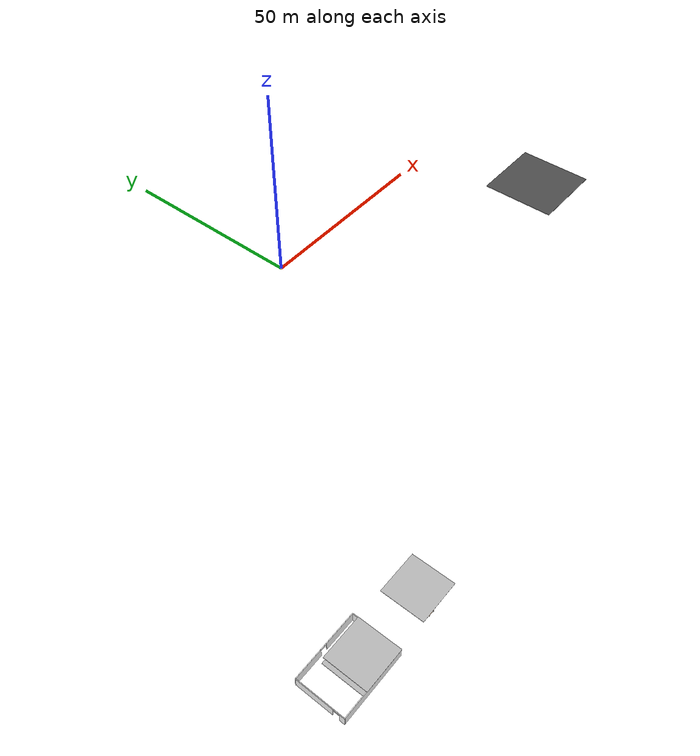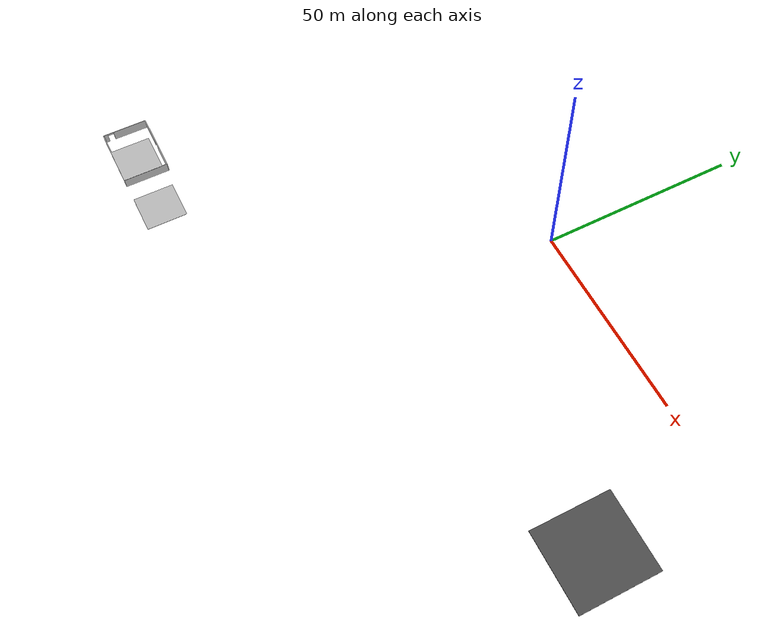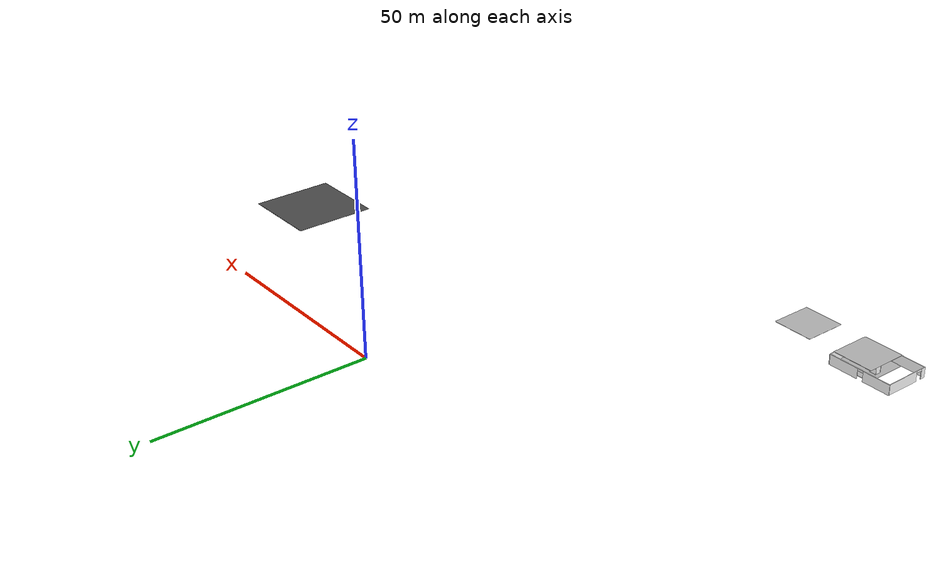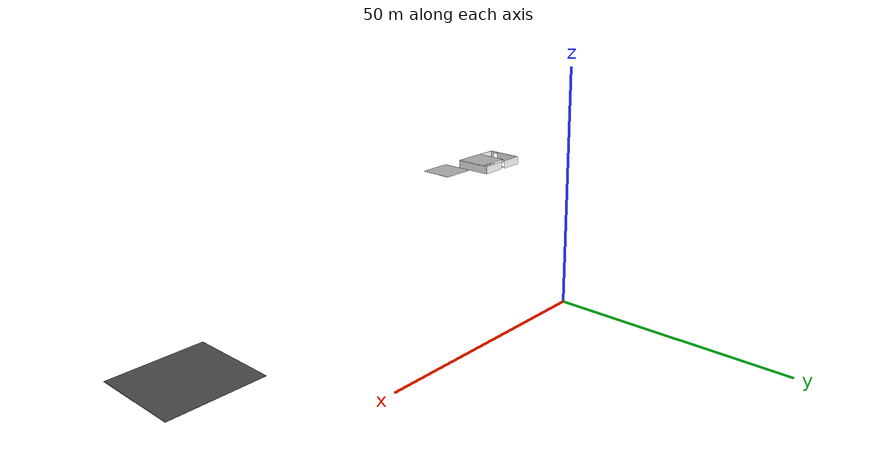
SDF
<sdf version="1.6">
 <world name="default">
  <model name="office1">
   <pose>-70.8387 -79.6403 0 0 -0 0</pose>
   <link name="Wall_11">
    <pose>-7.925 0 0 0 0 -1.5708</pose>
    <visual name="Wall_11_Visual_0">
     <pose>-1.33407 0 1.25 0 -0 0</pose>
     <geometry><box><size>8.58187 0.15 2.5</size></box></geometry>
     <material>
      <script>
       <uri>model://office_env/materials/scripts</uri>
       <uri>model://office_env/materials/textures</uri>
       <name>wall</name>
      </script>
      <ambient>1 1 1 1</ambient>
     </material>
    </visual>
    <collision name="Wall_11_Collision_0">
     <geometry><box><size>8.58187 0.15 2.5</size></box></geometry>
     <pose>-1.33407 0 1.25 0 -0 0</pose>
    </collision>
    <visual name="Wall_11_Visual_1">
     <pose>5.04094 0 1.25 0 -0 0</pose>
     <geometry><box><size>1.16813 0.15 2.5</size></box></geometry>
     <material>
      <script>
       <uri>model://office_env/materials/scripts</uri>
       <uri>model://office_env/materials/textures</uri>
       <name>wall</name>
      </script>
      <ambient>1 1 1 1</ambient>
     </material>
    </visual>
    <collision name="Wall_11_Collision_1">
     <geometry><box><size>1.16813 0.15 2.5</size></box></geometry>
     <pose>5.04094 0 1.25 0 -0 0</pose>
    </collision>
    <visual name="Wall_11_Visual_2">
     <pose>3.70687 0 2.25 0 -0 0</pose>
     <geometry><box><size>1.5 0.15 0.5</size></box></geometry>
     <material>
      <script>
       <uri>model://office_env/materials/scripts</uri>
       <uri>model://office_env/materials/textures</uri>
       <name>wall</name>
      </script>
      <ambient>1 1 1 1</ambient>
     </material>
    </visual>
    <collision name="Wall_11_Collision_2">
     <geometry><box><size>1.5 0.15 0.5</size></box></geometry>
     <pose>3.70687 0 2.25 0 -0 0</pose>
    </collision>
   </link>
   <link name="Wall_12">
    <collision name="Wall_12_Collision">
     <geometry><box><size>16 0.15 2.5</size></box></geometry>
     <pose>0 0 1.25 0 -0 0</pose>
    </collision>
    <visual name="Wall_12_Visual">
     <pose>0 0 1.25 0 -0 0</pose>
     <geometry><box><size>16 0.15 2.5</size></box></geometry>
     <material>
      <script>
       <uri>model://office_env/materials/scripts</uri>
       <uri>model://office_env/materials/textures</uri>
       <name>wall</name>
      </script>
      <ambient>1 1 1 1</ambient>
     </material>
    </visual>
    <pose>0 -5.55 0 0 -0 0</pose>
   </link>
   <link name="Wall_13">
    <collision name="Wall_13_Collision">
     <geometry><box><size>11.25 0.15 2.5</size></box></geometry>
     <pose>0 0 1.25 0 -0 0</pose>
    </collision>
    <visual name="Wall_13_Visual">
     <pose>0 0 1.25 0 -0 0</pose>
     <geometry><box><size>11.25 0.15 2.5</size></box></geometry>
     <material>
      <script>
       <uri>model://office_env/materials/scripts</uri>
       <uri>model://office_env/materials/textures</uri>
       <name>wall</name>
      </script>
      <ambient>1 1 1 1</ambient>
     </material>
    </visual>
    <pose>7.925 0 0 0 -0 1.5708</pose>
   </link>
   <link name="Wall_14">
    <pose>0 5.55 0 0 -0 3.14159</pose>
    <visual name="Wall_14_Visual_0">
     <pose>-4.22963 0 1.25 0 -0 0</pose>
     <geometry><box><size>7.54074 0.15 2.5</size></box></geometry>
     <material>
      <script>
       <uri>model://office_env/materials/scripts</uri>
       <uri>model://office_env/materials/textures</uri>
       <name>wall</name>
      </script>
      <ambient>1 1 1 1</ambient>
     </material>
    </visual>
    <collision name="Wall_14_Collision_0">
     <geometry><box><size>7.54074 0.15 2.5</size></box></geometry>
     <pose>-4.22963 0 1.25 0 -0 0</pose>
    </collision>
    <visual name="Wall_14_Visual_1">
     <pose>4.52037 0 1.25 0 -0 0</pose>
     <geometry><box><size>6.95926 0.15 2.5</size></box></geometry>
     <material>
      <script>
       <uri>model://office_env/materials/scripts</uri>
       <uri>model://office_env/materials/textures</uri>
       <name>wall</name>
      </script>
      <ambient>1 1 1 1</ambient>
     </material>
    </visual>
    <collision name="Wall_14_Collision_1">
     <geometry><box><size>6.95926 0.15 2.5</size></box></geometry>
     <pose>4.52037 0 1.25 0 -0 0</pose>
    </collision>
    <visual name="Wall_14_Visual_2">
     <pose>0.290743 0 2.25 0 -0 0</pose>
     <geometry><box><size>1.5 0.15 0.5</size></box></geometry>
     <material>
      <script>
       <uri>model://office_env/materials/scripts</uri>
       <uri>model://office_env/materials/textures</uri>
       <name>wall</name>
      </script>
      <ambient>1 1 1 1</ambient>
     </material>
    </visual>
    <collision name="Wall_14_Collision_2">
     <geometry><box><size>1.5 0.15 0.5</size></box></geometry>
     <pose>0.290743 0 2.25 0 -0 0</pose>
    </collision>
   </link>
   <link name="Wall_16">
    <collision name="Wall_16_Collision">
     <geometry><box><size>1.5 0.15 2.5</size></box></geometry>
     <pose>0 0 1.25 0 -0 0</pose>
    </collision>
    <visual name="Wall_16_Visual">
     <pose>0 0 1.25 0 -0 0</pose>
     <geometry><box><size>1.5 0.15 2.5</size></box></geometry>
     <material>
      <script>
       <uri>model://office_env/materials/scripts</uri>
       <uri>model://office_env/materials/textures</uri>
       <name>wall</name>
      </script>
      <ambient>1 1 1 1</ambient>
     </material>
    </visual>
    <pose>-0.982348 0.645568 0 0 0 -1.5708</pose>
   </link>
   <link name="Wall_17">
    <collision name="Wall_17_Collision">
     <geometry><box><size>1.75 0.15 2.5</size></box></geometry>
     <pose>0 0 1.25 0 -0 0</pose>
    </collision>
    <visual name="Wall_17_Visual">
     <pose>0 0 1.25 0 -0 0</pose>
     <geometry><box><size>1.75 0.15 2.5</size></box></geometry>
     <material>
      <script>
       <uri>model://office_env/materials/scripts</uri>
       <uri>model://office_env/materials/textures</uri>
       <name>wall</name>
      </script>
      <ambient>1 1 1 1</ambient>
     </material>
    </visual>
    <pose>-0.182348 -0.029432 0 0 -0 0</pose>
   </link>
   <link name="Wall_18">
    <collision name="Wall_18_Collision">
     <geometry><box><size>1.5 0.15 2.5</size></box></geometry>
     <pose>0 0 1.25 0 -0 0</pose>
    </collision>
    <visual name="Wall_18_Visual">
     <pose>0 0 1.25 0 -0 0</pose>
     <geometry><box><size>1.5 0.15 2.5</size></box></geometry>
     <material>
      <script>
       <uri>model://office_env/materials/scripts</uri>
       <uri>model://office_env/materials/textures</uri>
       <name>wall</name>
      </script>
      <ambient>1 1 1 1</ambient>
     </material>
    </visual>
    <pose>0.617652 0.645568 0 0 -0 1.5708</pose>
   </link>
   <link name="Wall_19">
    <collision name="Wall_19_Collision">
     <geometry><box><size>1.75 0.15 2.5</size></box></geometry>
     <pose>0 0 1.25 0 -0 0</pose>
    </collision>
    <visual name="Wall_19_Visual">
     <pose>0 0 1.25 0 -0 0</pose>
     <geometry><box><size>1.75 0.15 2.5</size></box></geometry>
     <material>
      <script>
       <uri>model://office_env/materials/scripts</uri>
       <uri>model://office_env/materials/textures</uri>
       <name>wall</name>
      </script>
      <ambient>1 1 1 1</ambient>
     </material>
    </visual>
    <pose>-0.182348 1.32057 0 0 -0 3.14159</pose>
   </link>
   <static>1</static>
  </model>
  <model name="asphalt_plane">
   <static>1</static>
   <link name="link">
    <collision name="collision"><geometry><box><size>20 20 0.1</size></box></geometry></collision>
    <visual name="visual">
     <cast_shadows>0</cast_shadows>
     <geometry><box><size>20 20 0.1</size></box></geometry>
     <material>
      <script>
       <uri>model://asphalt_plane/materials/scripts</uri>
       <uri>model://asphalt_plane/materials/textures</uri>
       <name>vrc/asphalt</name>
      </script>
     </material>
    </visual>
   </link>
   <pose>70.7475 -31.5972 0 0 -0 0</pose>
  </model>
  <model name="table_7">
   <static>0</static>
   <link name="link">
    <collision name="surface">
     <pose>0 0 1 0 -0 0</pose>
     <geometry><box><size>1.5 0.8 0.03</size></box></geometry>
     <surface><friction><ode><mu>0.6</mu><mu2>0.6</mu2></ode></friction></surface>
    </collision>
    <visual name="visual1">
     <pose>0 0 1 0 -0 0</pose>
     <geometry><box><size>1.4 0.8 0.04</size></box></geometry>
     <material>
      <script><uri>file://media/materials/scripts/gazebo.material</uri><name>Gazebo/Wood</name></script>
     </material>
    </visual>
    <collision name="front_left_leg">
     <pose>0.68 0.38 0.5 0 -0 0</pose>
     <geometry><cylinder><radius>0.02</radius><length>1</length></cylinder></geometry>
    </collision>
    <visual name="front_left_leg">
     <pose>0.68 0.38 0.5 0 -0 0</pose>
     <geometry><cylinder><radius>0.02</radius><length>1</length></cylinder></geometry>
     <material>
      <script>
       <uri>model://office_env/materials/scripts</uri>
       <uri>model://office_env/materials/textures</uri>
       <name>wall</name>
      </script>
     </material>
    </visual>
    <collision name="front_right_leg">
     <pose>0.68 -0.38 0.5 0 -0 0</pose>
     <geometry><cylinder><radius>0.02</radius><length>1</length></cylinder></geometry>
    </collision>
    <visual name="front_right_leg">
     <pose>0.68 -0.38 0.5 0 -0 0</pose>
     <geometry><cylinder><radius>0.02</radius><length>1</length></cylinder></geometry>
     <material>
      <script>
       <uri>model://office_env/materials/scripts</uri>
       <uri>model://office_env/materials/textures</uri>
       <name>wall</name>
      </script>
     </material>
    </visual>
    <collision name="back_right_leg">
     <pose>-0.68 -0.38 0.5 0 -0 0</pose>
     <geometry><cylinder><radius>0.02</radius><length>1</length></cylinder></geometry>
    </collision>
    <visual name="back_right_leg">
     <pose>-0.68 -0.38 0.5 0 -0 0</pose>
     <geometry><cylinder><radius>0.02</radius><length>1</length></cylinder></geometry>
     <material>
      <script>
       <uri>model://office_env/materials/scripts</uri>
       <uri>model://office_env/materials/textures</uri>
       <name>wall</name>
      </script>
     </material>
    </visual>
    <collision name="back_left_leg">
     <pose>-0.68 0.38 0.5 0 -0 0</pose>
     <geometry><cylinder><radius>0.02</radius><length>1</length></cylinder></geometry>
    </collision>
    <visual name="back_left_leg">
     <pose>-0.68 0.38 0.5 0 -0 0</pose>
     <geometry><cylinder><radius>0.02</radius><length>1</length></cylinder></geometry>
     <material>
      <script>
       <uri>model://office_env/materials/scripts</uri>
       <uri>model://office_env/materials/textures</uri>
       <name>wall</name>
      </script>
     </material>
    </visual>
    <inertial>
     <inertia><ixx>1</ixx><ixy>0</ixy><ixz>0</ixz><iyy>1</iyy><iyz>0</iyz><izz>1</izz></inertia>
     <mass>1</mass>
    </inertial>
   </link>
   <pose>-53.1425 -84.5557 0.034993 -2e-06 3e-06 0</pose>
  </model>
  <model name="Floor_25">
   <link name="main">
    <pose>0 0 0.01 0 -0 0</pose>
    <collision name="main_Collision"><geometry><box><size>10 10 0.05</size></box></geometry></collision>
    <visual name="main_Visual">
     <geometry><box><size>10 10 0.05</size></box></geometry>
     <material>
      <script>
       <uri>model://Floor_small/materials/scripts</uri>
       <uri>model://Floor_small/materials/textures</uri>
       <name>floor</name>
      </script>
     </material>
    </visual>
   </link>
   <static>1</static>
   <pose>-67.9672 -80.1215 0 0 -0 0</pose>
  </model>
  <model name="Floor_3_clone_5">
   <link name="main">
    <pose>0 0 0.01 0 -0 0</pose>
    <collision name="main_Collision"><geometry><box><size>10 10 0.05</size></box></geometry></collision>
    <visual name="main_Visual">
     <geometry><box><size>10 10 0.05</size></box></geometry>
     <material>
      <script>
       <uri>model://Floor_small/materials/scripts</uri>
       <uri>model://Floor_small/materials/textures</uri>
       <name>floor</name>
      </script>
     </material>
    </visual>
   </link>
   <static>1</static>
   <pose>-51.1521 -80.2612 2.5 0 -0 0</pose>
  </model>
  <model name="Floor_3_clone_clone">
   <link name="main">
    <pose>0 0 0.01 0 -0 0</pose>
    <collision name="main_Collision"><geometry><box><size>10 10 0.05</size></box></geometry></collision>
    <visual name="main_Visual">
     <geometry><box><size>10 10 0.05</size></box></geometry>
     <material>
      <script>
       <uri>model://Floor_small/materials/scripts</uri>
       <uri>model://Floor_small/materials/textures</uri>
       <name>floor</name>
      </script>
     </material>
    </visual>
   </link>
   <static>1</static>
   <pose>-67.7981 -80.3492 2.5 0 -0 0</pose>
  </model>
 </world>
</sdf>
